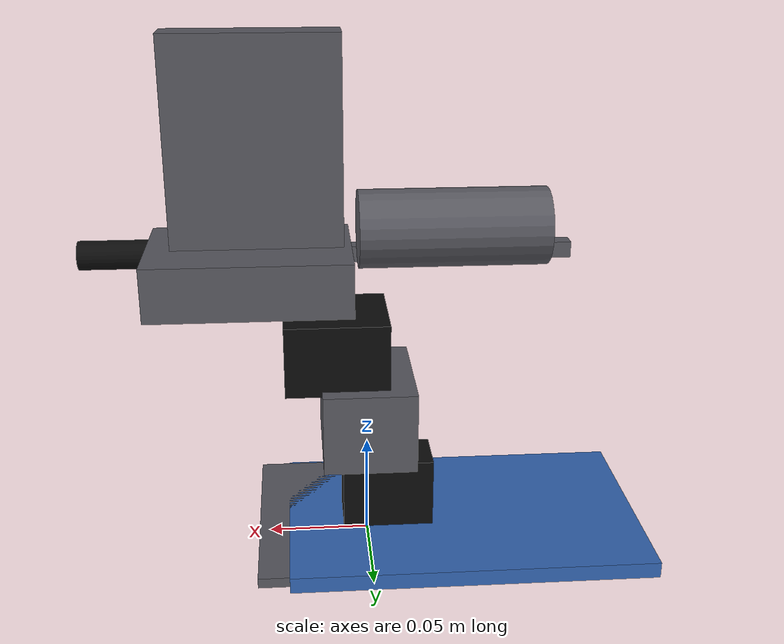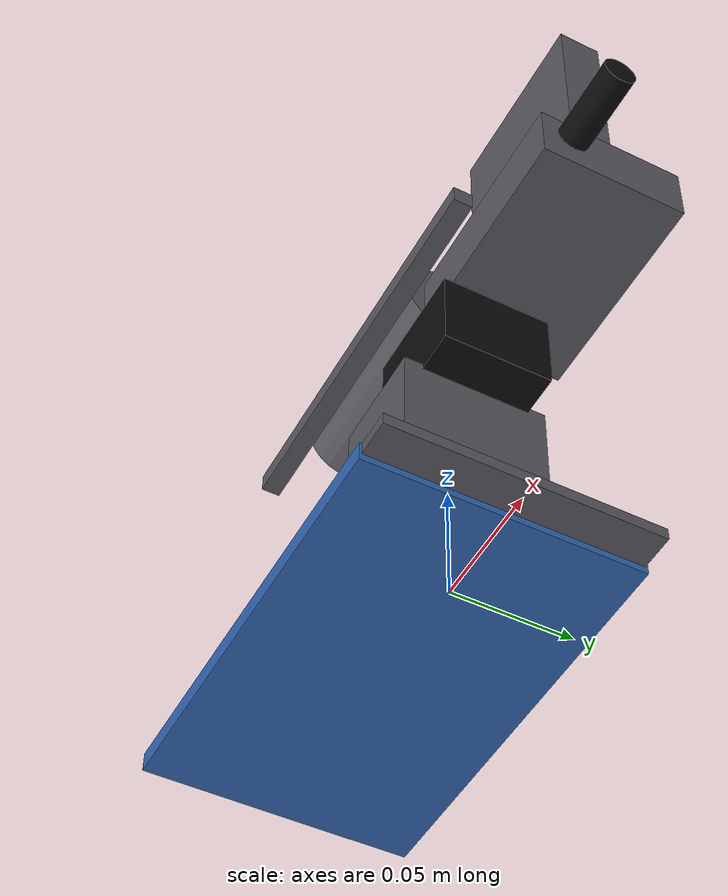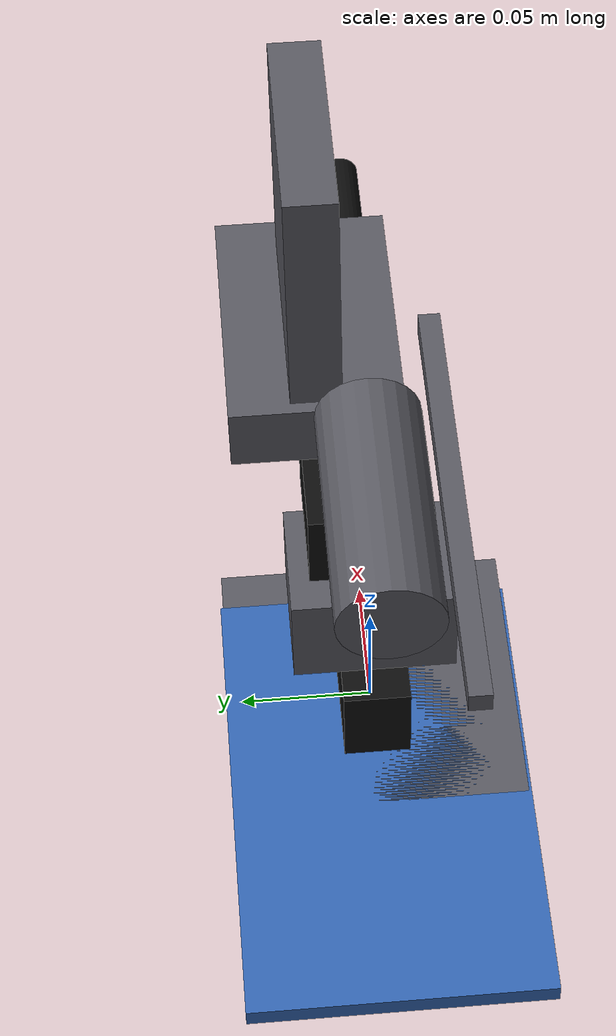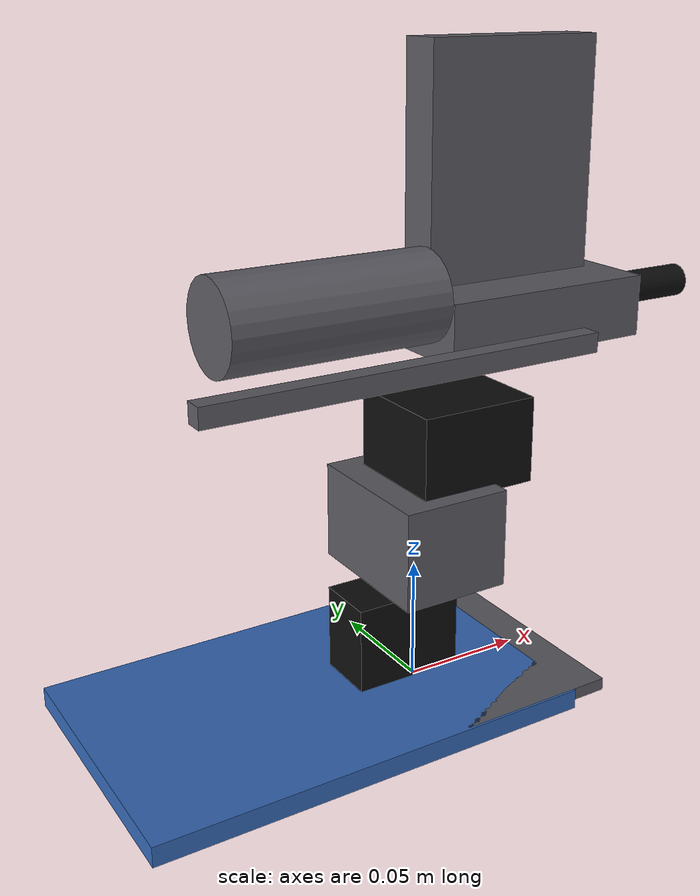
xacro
<?xml version="1.0"?>
<robot xmlns:xacro="http://www.ros.org/wiki/xacro" name="turret_printed">
  <xacro:arg name="launcher" default="true"/>
  <xacro:include filename="turret.urdf.xacro"/>

  <!-- Base plate (hardware/parts/turret/base_plate.py: 178 x 112 x 8 mm,
       x -138..40 mm about the pan axis), with the controller boards -->
  <link name="base_link">
    <visual>
      <origin xyz="-0.049 0 0.004" rpy="0 0 0"/>
      <geometry><box size="0.178 0.112 0.008"/></geometry>
      <material name="turret_base_plate"><color rgba="0.2 0.4 0.7 1"/></material>
    </visual>
    <inertial>
      <mass value="0.16"/>
      <origin xyz="-0.06 0 0.006" rpy="0 0 0"/>
      <inertia ixx="0.00017" ixy="0" ixz="0" iyy="0.00042" iyz="0" izz="0.00058"/>
    </inertial>
  </link>
  <xacro:pantilt_turret parent="base_link" xyz="0 0 0.003" launcher="$(arg launcher)"/>
</robot>

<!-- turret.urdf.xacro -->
<robot xmlns:xacro="http://www.ros.org/wiki/xacro">
  <!-- Turret geometry (metres, radians); systems/racecar_turret/interfaces.md -->
  <xacro:property name="pan_axis_height" value="0.045"/>
  <xacro:property name="tilt_axis_height" value="0.055"/>
  <xacro:property name="camera_forward" value="0.035"/>
  <xacro:property name="pan_limit" value="1.5708"/>
  <xacro:property name="tilt_min" value="-0.65"/>
  <xacro:property name="tilt_max" value="0.75"/>
  <!-- ST3215 at 12 V: about 2.9 N m stall, 0.222 s per 60 degrees -->
  <xacro:property name="servo_effort" value="2.9"/>
  <xacro:property name="servo_velocity" value="4.7"/>
  <!-- Launcher (hardware/parts/turret/_launcher.py, in turret/tilt_link) -->
  <xacro:property name="launcher_rack_origin" value="-0.1035 0 0.058"/>
  <xacro:property name="launcher_prime" value="0.038"/>
  <xacro:property name="launcher_pinion_radius" value="0.0135"/>
  <xacro:property name="launcher_trigger_origin" value="-0.109 0.021375 0.059"/>
  <xacro:property name="launcher_trigger_fire" value="0.6"/>
  <xacro:property name="launcher_muzzle_xyz" value="0.133 0 0.048"/>

  <xacro:macro name="pantilt_turret" params="parent xyz launcher:=true">
    <!-- The plate and the pan servo, whose body is fixed on it (ST3215,
         45 x 25 x 35 mm, output shaft up at the pan axis) -->
    <link name="turret/base_link">
      <visual>
        <origin xyz="0 0 0.0025" rpy="0 0 0"/>
        <geometry><box size="0.11 0.11 0.005"/></geometry>
        <material name="turret_grey"><color rgba="0.35 0.35 0.38 1"/></material>
      </visual>
      <visual>
        <origin xyz="-0.01 0 0.0225" rpy="0 0 0"/>
        <geometry><box size="0.045 0.025 0.035"/></geometry>
        <material name="turret_black"><color rgba="0.05 0.05 0.05 1"/></material>
      </visual>
      <inertial>
        <mass value="0.18"/>
        <origin xyz="-0.0033 0 0.0092" rpy="0 0 0"/>
        <inertia ixx="0.00014" ixy="0" ixz="0" iyy="0.00015" iyz="0" izz="0.00025"/>
      </inertial>
    </link>
    <joint name="turret_mount_joint" type="fixed">
      <parent link="${parent}"/>
      <child link="turret/base_link"/>
      <origin xyz="${xyz}" rpy="0 0 0"/>
    </joint>

    <!-- Pan stage: the bracket on the pan servo's horn and the tilt servo it
         carries -->
    <link name="turret/pan_link">
      <visual>
        <origin xyz="0 0 0.02" rpy="0 0 0"/>
        <geometry><box size="0.045 0.06 0.04"/></geometry>
        <material name="turret_grey"/>
      </visual>
      <inertial>
        <mass value="0.09"/>
        <origin xyz="0 0 0.02" rpy="0 0 0"/>
        <inertia ixx="0.000039" ixy="0" ixz="0" iyy="0.000027" iyz="0" izz="0.000042"/>
      </inertial>
    </link>
    <joint name="pan_joint" type="revolute">
      <parent link="turret/base_link"/>
      <child link="turret/pan_link"/>
      <origin xyz="0 0 ${pan_axis_height}" rpy="0 0 0"/>
      <axis xyz="0 0 -1"/>
      <limit lower="${-pan_limit}" upper="${pan_limit}" effort="${servo_effort}" velocity="${servo_velocity}"/>
    </joint>

    <!-- Tilt stage: the camera on the tilt servo's horn -->
    <link name="turret/tilt_link">
      <visual>
        <origin xyz="0.015 0 0" rpy="0 0 0"/>
        <geometry><box size="0.05 0.045 0.035"/></geometry>
        <material name="turret_black"/>
      </visual>
      <inertial>
        <mass value="0.08"/>
        <origin xyz="0.015 0 0" rpy="0 0 0"/>
        <inertia ixx="0.00002" ixy="0" ixz="0" iyy="0.00003" iyz="0" izz="0.00003"/>
      </inertial>
    </link>
    <joint name="tilt_joint" type="revolute">
      <parent link="turret/pan_link"/>
      <child link="turret/tilt_link"/>
      <origin xyz="0 0 ${tilt_axis_height}" rpy="0 0 0"/>
      <axis xyz="0 -1 0"/>
      <limit lower="${tilt_min}" upper="${tilt_max}" effort="${servo_effort}" velocity="${servo_velocity}"/>
    </joint>

    <!-- Turret camera body, x forward / y left / z up, and its optical frame -->
    <link name="turret/camera_link"/>
    <joint name="turret_camera_joint" type="fixed">
      <parent link="turret/tilt_link"/>
      <child link="turret/camera_link"/>
      <origin xyz="${camera_forward} 0 0" rpy="0 0 0"/>
    </joint>
    <link name="turret/camera_optical_frame"/>
    <joint name="turret_camera_optical_joint" type="fixed">
      <parent link="turret/camera_link"/>
      <child link="turret/camera_optical_frame"/>
      <origin xyz="0 0 0" rpy="-1.57079632679 0 -1.57079632679"/>
    </joint>

    <xacro:if value="${launcher}">
      <!-- Launcher body: plunger tube, breech, clip (full), barrel, the
           actuator and trigger servos, mounts; masses from the printed
           design's estimates -->
      <link name="turret/launcher_link">
        <visual>
          <origin xyz="-0.0405 0 0.058" rpy="0 1.57079632679 0"/>
          <geometry><cylinder radius="0.0184" length="0.089"/></geometry>
          <material name="turret_grey"/>
        </visual>
        <visual>
          <origin xyz="0.054 0.017 0.044" rpy="0 0 0"/>
          <geometry><box size="0.092 0.061 0.025"/></geometry>
          <material name="turret_grey"/>
        </visual>
        <visual>
          <origin xyz="0.05 0.017 0.104" rpy="0 0 0"/>
          <geometry><box size="0.077 0.018 0.093"/></geometry>
          <material name="turret_grey"/>
        </visual>
        <visual>
          <origin xyz="0.1105 0 0.048" rpy="0 1.57079632679 0"/>
          <geometry><cylinder radius="0.00675" length="0.045"/></geometry>
          <material name="turret_black"/>
        </visual>
        <inertial>
          <mass value="0.403"/>
          <origin xyz="-0.0247 0.0006 0.0507" rpy="0 0 0"/>
          <inertia ixx="0.000706" ixy="0.000011" ixz="-0.000101" iyy="0.002252" iyz="-0.000171" izz="0.00243"/>
        </inertial>
      </link>
      <joint name="turret_launcher_joint" type="fixed">
        <parent link="turret/tilt_link"/>
        <child link="turret/launcher_link"/>
        <origin xyz="0 0 0" rpy="0 0 0"/>
      </joint>

      <!-- Priming rack: its origin is the hook's face on the plunger rod's
           collar, at rest; positive draws it back -->
      <link name="turret/launcher_rack_link">
        <visual>
          <origin xyz="0.0833 -0.027 -0.020" rpy="0 0 0"/>
          <geometry><box size="0.167 0.008 0.008"/></geometry>
          <material name="turret_grey"/>
        </visual>
        <inertial>
          <mass value="0.0211"/>
          <origin xyz="0.0689 -0.0258 -0.0175" rpy="0 0 0"/>
          <inertia ixx="0.0000044" ixy="0.0000053" ixz="0.0000028" iyy="0.0000652" iyz="0" izz="0.0000659"/>
        </inertial>
      </link>
      <joint name="actuator_joint" type="prismatic">
        <parent link="turret/tilt_link"/>
        <child link="turret/launcher_rack_link"/>
        <origin xyz="${launcher_rack_origin}" rpy="0 0 0"/>
        <axis xyz="-1 0 0"/>
        <!-- rack force at the servo's stall torque, rack speed at its no-load speed -->
        <limit lower="0" upper="${launcher_prime}" effort="${servo_effort / launcher_pinion_radius}"
               velocity="${servo_velocity * launcher_pinion_radius}"/>
      </joint>

      <!-- Trigger arm on the trigger servo's horn: 0 safe, positive lifts
           the sear -->
      <link name="turret/launcher_trigger_link">
        <inertial>
          <mass value="0.0013"/>
          <origin xyz="0.006 -0.0015 0" rpy="0 0 0"/>
          <inertia ixx="0.00000006" ixy="0" ixz="0" iyy="0.0000001" iyz="0" izz="0.00000006"/>
        </inertial>
      </link>
      <joint name="trigger_joint" type="revolute">
        <parent link="turret/tilt_link"/>
        <child link="turret/launcher_trigger_link"/>
        <origin xyz="${launcher_trigger_origin}" rpy="0 0 0"/>
        <axis xyz="0 -1 0"/>
        <limit lower="0" upper="${launcher_trigger_fire}" effort="${servo_effort}" velocity="${servo_velocity}"/>
      </joint>

      <!-- Muzzle: the barrel's exit, x along the bore -->
      <link name="turret/muzzle"/>
      <joint name="turret_muzzle_joint" type="fixed">
        <parent link="turret/tilt_link"/>
        <child link="turret/muzzle"/>
        <origin xyz="${launcher_muzzle_xyz}" rpy="0 0 0"/>
      </joint>
    </xacro:if>
  </xacro:macro>
</robot>
